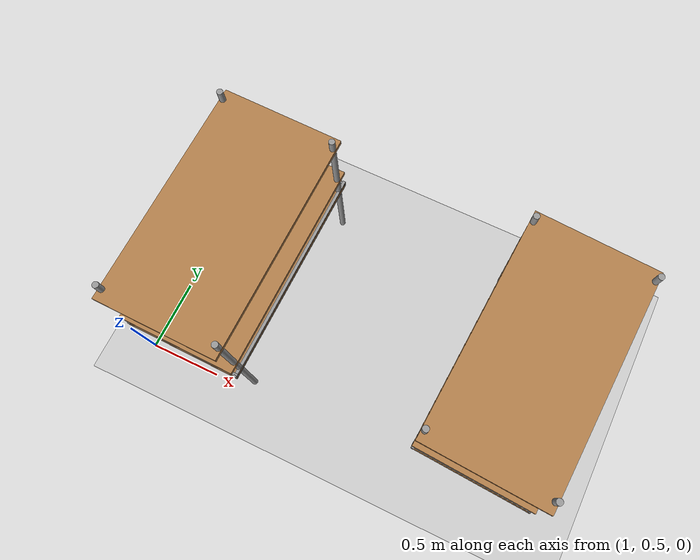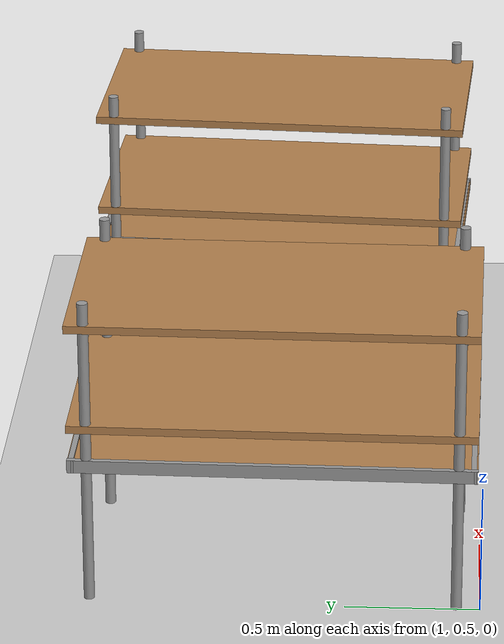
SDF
<sdf version="1.7">
 <world name="default">
  <model name="ground_plane">
   <static>1</static>
   <link name="link">
    <collision name="collision">
     <geometry><plane><normal>0 0 1</normal><size>100 100</size></plane></geometry>
     <surface><friction><ode><mu>100</mu><mu2>50</mu2></ode></friction></surface>
    </collision>
    <visual name="visual">
     <cast_shadows>0</cast_shadows>
     <geometry><plane><normal>0 0 1</normal><size>100 100</size></plane></geometry>
     <material>
      <script><uri>file://media/materials/scripts/gazebo.material</uri><name>Gazebo/Grey</name></script>
     </material>
    </visual>
   </link>
  </model>
  <model name="warehouse_pallet_clone_0_clone_2_clone">
   <link name="warehouse_pallet::link">
    <pose>0 0 -0 0 -0 1.57</pose>
    <inertial>
     <inertia>
      <ixx>0.0267042</ixx>
      <ixy>0</ixy>
      <ixz>0</ixz>
      <iyy>0.0937875</iyy>
      <iyz>0</iyz>
      <izz>0.120417</izz>
     </inertia>
     <mass>0.5</mass>
    </inertial>
    <visual name="holding1_visual">
     <pose>0 0.39 0.45 0 -0 0</pose>
     <geometry><box><size>1.5 0.02 0.05</size></box></geometry>
     <material>
      <script><uri>file://media/materials/scripts/gazebo.material</uri><name>Gazebo/Grey</name></script>
      <shader type="pixel"><normal_map>__default__</normal_map></shader>
      <ambient>0.3 0.3 0.3 1</ambient>
      <diffuse>0.7 0.7 0.7 1</diffuse>
      <specular>0.01 0.01 0.01 1</specular>
      <emissive>0 0 0 1</emissive>
     </material>
    </visual>
    <visual name="front_left_leg">
     <pose>0.68 0.38 0.5 0 -0 0</pose>
     <geometry><cylinder><radius>0.02</radius><length>1.2</length></cylinder></geometry>
     <material>
      <script><uri>file://media/materials/scripts/gazebo.material</uri><name>Gazebo/Grey</name></script>
      <shader type="pixel"><normal_map>__default__</normal_map></shader>
      <ambient>0.3 0.3 0.3 1</ambient>
      <diffuse>0.7 0.7 0.7 1</diffuse>
      <specular>0.01 0.01 0.01 1</specular>
      <emissive>0 0 0 1</emissive>
     </material>
    </visual>
    <visual name="front_right_leg">
     <pose>0.68 -0.38 0.5 0 -0 0</pose>
     <geometry><cylinder><radius>0.02</radius><length>1.2</length></cylinder></geometry>
     <material>
      <script><uri>file://media/materials/scripts/gazebo.material</uri><name>Gazebo/Grey</name></script>
      <shader type="pixel"><normal_map>__default__</normal_map></shader>
      <ambient>0.3 0.3 0.3 1</ambient>
      <diffuse>0.7 0.7 0.7 1</diffuse>
      <specular>0.01 0.01 0.01 1</specular>
      <emissive>0 0 0 1</emissive>
     </material>
    </visual>
    <visual name="back_right_leg">
     <pose>-0.68 -0.38 0.5 0 -0 0</pose>
     <geometry><cylinder><radius>0.02</radius><length>1.2</length></cylinder></geometry>
     <material>
      <script><uri>file://media/materials/scripts/gazebo.material</uri><name>Gazebo/Grey</name></script>
      <shader type="pixel"><normal_map>__default__</normal_map></shader>
      <ambient>0.3 0.3 0.3 1</ambient>
      <diffuse>0.7 0.7 0.7 1</diffuse>
      <specular>0.01 0.01 0.01 1</specular>
      <emissive>0 0 0 1</emissive>
     </material>
    </visual>
    <visual name="back_left_leg">
     <pose>-0.68 0.38 0.5 0 -0 0</pose>
     <geometry><cylinder><radius>0.02</radius><length>1.2</length></cylinder></geometry>
     <material>
      <script><uri>file://media/materials/scripts/gazebo.material</uri><name>Gazebo/Grey</name></script>
      <shader type="pixel"><normal_map>__default__</normal_map></shader>
      <ambient>0.3 0.3 0.3 1</ambient>
      <diffuse>0.7 0.7 0.7 1</diffuse>
      <specular>0.01 0.01 0.01 1</specular>
      <emissive>0 0 0 1</emissive>
     </material>
    </visual>
    <visual name="visual1">
     <pose>0 0 0.45 0 -0 0</pose>
     <geometry><box><size>1.5 0.8 0.03</size></box></geometry>
     <material>
      <script><uri>file://media/materials/scripts/gazebo.material</uri><name>Gazebo/Wood</name></script>
      <shader type="pixel"><normal_map>__default__</normal_map></shader>
      <ambient>1 1 1 1</ambient>
      <diffuse>1 1 1 1</diffuse>
      <specular>0.2 0.2 0.2 1</specular>
      <emissive>0 0 0 1</emissive>
     </material>
    </visual>
    <visual name="holding2_visual">
     <pose>0 -0.39 0.45 0 -0 0</pose>
     <geometry><box><size>1.5 0.02 0.05</size></box></geometry>
     <material>
      <script><uri>file://media/materials/scripts/gazebo.material</uri><name>Gazebo/Grey</name></script>
      <shader type="pixel"><normal_map>__default__</normal_map></shader>
      <ambient>0.3 0.3 0.3 1</ambient>
      <diffuse>0.7 0.7 0.7 1</diffuse>
      <specular>0.01 0.01 0.01 1</specular>
      <emissive>0 0 0 1</emissive>
     </material>
    </visual>
    <visual name="holding3_visual">
     <pose>0.735 0 0.45 0 -0 1.57</pose>
     <geometry><box><size>0.8 0.02 0.05</size></box></geometry>
     <material>
      <script><uri>file://media/materials/scripts/gazebo.material</uri><name>Gazebo/Grey</name></script>
      <shader type="pixel"><normal_map>__default__</normal_map></shader>
      <ambient>0.3 0.3 0.3 1</ambient>
      <diffuse>0.7 0.7 0.7 1</diffuse>
      <specular>0.01 0.01 0.01 1</specular>
      <emissive>0 0 0 1</emissive>
     </material>
    </visual>
    <visual name="holding4_visual">
     <pose>-0.735 0 0.45 0 -0 1.57</pose>
     <geometry><box><size>0.8 0.02 0.05</size></box></geometry>
     <material>
      <script><uri>file://media/materials/scripts/gazebo.material</uri><name>Gazebo/Grey</name></script>
      <shader type="pixel"><normal_map>__default__</normal_map></shader>
      <ambient>0.3 0.3 0.3 1</ambient>
      <diffuse>0.7 0.7 0.7 1</diffuse>
      <specular>0.01 0.01 0.01 1</specular>
      <emissive>0 0 0 1</emissive>
     </material>
    </visual>
    <visual name="visual2">
     <pose>0 0 0.6 0 -0 0</pose>
     <geometry><box><size>1.5 0.8 0.03</size></box></geometry>
     <material>
      <script><uri>file://media/materials/scripts/gazebo.material</uri><name>Gazebo/Wood</name></script>
      <shader type="pixel"><normal_map>__default__</normal_map></shader>
      <ambient>1 1 1 1</ambient>
      <diffuse>1 1 1 1</diffuse>
      <specular>0.2 0.2 0.2 1</specular>
      <emissive>0 0 0 1</emissive>
     </material>
    </visual>
    <visual name="visual3">
     <pose>0 0 1 0 -0 0</pose>
     <geometry><box><size>1.5 0.8 0.03</size></box></geometry>
     <material>
      <script><uri>file://media/materials/scripts/gazebo.material</uri><name>Gazebo/Wood</name></script>
      <shader type="pixel"><normal_map>__default__</normal_map></shader>
      <ambient>1 1 1 1</ambient>
      <diffuse>1 1 1 1</diffuse>
      <specular>0.2 0.2 0.2 1</specular>
      <emissive>0 0 0 1</emissive>
     </material>
    </visual>
    <collision name="surface1">
     <pose>0 0 0.45 0 -0 0</pose>
     <geometry><box><size>1.5 0.8 0.03</size></box></geometry>
     <surface>
      <friction>
       <ode><mu>20</mu><mu2>20</mu2><fdir1>0 0 0</fdir1><slip1>0</slip1><slip2>0</slip2></ode>
       <torsional>
        <coefficient>1</coefficient>
        <patch_radius>0</patch_radius>
        <surface_radius>0</surface_radius>
        <use_patch_radius>1</use_patch_radius>
        <ode><slip>0</slip></ode>
       </torsional>
      </friction>
      <bounce><restitution_coefficient>0</restitution_coefficient><threshold>1e+06</threshold></bounce>
      <contact>
       <collide_without_contact>0</collide_without_contact>
       <collide_without_contact_bitmask>1</collide_without_contact_bitmask>
       <collide_bitmask>1</collide_bitmask>
       <ode>
        <soft_cfm>0</soft_cfm>
        <soft_erp>0.2</soft_erp>
        <kp>1e+13</kp>
        <kd>1</kd>
        <max_vel>0.01</max_vel>
        <min_depth>0</min_depth>
       </ode>
       <bullet>
        <split_impulse>1</split_impulse>
        <split_impulse_penetration_threshold>-0.01</split_impulse_penetration_threshold>
        <soft_cfm>0</soft_cfm>
        <soft_erp>0.2</soft_erp>
        <kp>1e+13</kp>
        <kd>1</kd>
       </bullet>
      </contact>
     </surface>
    </collision>
    <collision name="holding1_collision">
     <pose>0 0.39 0.45 0 -0 0</pose>
     <geometry><box><size>1.5 0.02 0.05</size></box></geometry>
     <surface>
      <friction>
       <ode><mu>1e+09</mu><mu2>1e+09</mu2><fdir1>0 0 0</fdir1><slip1>0</slip1><slip2>0</slip2></ode>
       <torsional>
        <coefficient>1</coefficient>
        <patch_radius>0</patch_radius>
        <surface_radius>0</surface_radius>
        <use_patch_radius>1</use_patch_radius>
        <ode><slip>0</slip></ode>
       </torsional>
      </friction>
      <bounce><restitution_coefficient>0</restitution_coefficient><threshold>1e+06</threshold></bounce>
      <contact>
       <collide_without_contact>0</collide_without_contact>
       <collide_without_contact_bitmask>1</collide_without_contact_bitmask>
       <collide_bitmask>1</collide_bitmask>
       <ode>
        <soft_cfm>0</soft_cfm>
        <soft_erp>0.2</soft_erp>
        <kp>1e+13</kp>
        <kd>1</kd>
        <max_vel>0.01</max_vel>
        <min_depth>0</min_depth>
       </ode>
       <bullet>
        <split_impulse>1</split_impulse>
        <split_impulse_penetration_threshold>-0.01</split_impulse_penetration_threshold>
        <soft_cfm>0</soft_cfm>
        <soft_erp>0.2</soft_erp>
        <kp>1e+13</kp>
        <kd>1</kd>
       </bullet>
      </contact>
     </surface>
    </collision>
    <collision name="holding2_collision">
     <pose>0 -0.39 0.45 0 -0 0</pose>
     <geometry><box><size>1.5 0.02 0.05</size></box></geometry>
     <surface>
      <friction>
       <ode><mu>1e+09</mu><mu2>1e+09</mu2><fdir1>0 0 0</fdir1><slip1>0</slip1><slip2>0</slip2></ode>
       <torsional>
        <coefficient>1</coefficient>
        <patch_radius>0</patch_radius>
        <surface_radius>0</surface_radius>
        <use_patch_radius>1</use_patch_radius>
        <ode><slip>0</slip></ode>
       </torsional>
      </friction>
      <bounce><restitution_coefficient>0</restitution_coefficient><threshold>1e+06</threshold></bounce>
      <contact>
       <collide_without_contact>0</collide_without_contact>
       <collide_without_contact_bitmask>1</collide_without_contact_bitmask>
       <collide_bitmask>1</collide_bitmask>
       <ode>
        <soft_cfm>0</soft_cfm>
        <soft_erp>0.2</soft_erp>
        <kp>1e+13</kp>
        <kd>1</kd>
        <max_vel>0.01</max_vel>
        <min_depth>0</min_depth>
       </ode>
       <bullet>
        <split_impulse>1</split_impulse>
        <split_impulse_penetration_threshold>-0.01</split_impulse_penetration_threshold>
        <soft_cfm>0</soft_cfm>
        <soft_erp>0.2</soft_erp>
        <kp>1e+13</kp>
        <kd>1</kd>
       </bullet>
      </contact>
     </surface>
    </collision>
    <collision name="holding3_collision">
     <pose>0.735 0 0.45 0 -0 1.57</pose>
     <geometry><box><size>0.8 0.02 0.05</size></box></geometry>
     <surface>
      <friction>
       <ode><mu>1e+09</mu><mu2>1e+09</mu2><fdir1>0 0 0</fdir1><slip1>0</slip1><slip2>0</slip2></ode>
       <torsional>
        <coefficient>1</coefficient>
        <patch_radius>0</patch_radius>
        <surface_radius>0</surface_radius>
        <use_patch_radius>1</use_patch_radius>
        <ode><slip>0</slip></ode>
       </torsional>
      </friction>
      <bounce><restitution_coefficient>0</restitution_coefficient><threshold>1e+06</threshold></bounce>
      <contact>
       <collide_without_contact>0</collide_without_contact>
       <collide_without_contact_bitmask>1</collide_without_contact_bitmask>
       <collide_bitmask>1</collide_bitmask>
       <ode>
        <soft_cfm>0</soft_cfm>
        <soft_erp>0.2</soft_erp>
        <kp>1e+13</kp>
        <kd>1</kd>
        <max_vel>0.01</max_vel>
        <min_depth>0</min_depth>
       </ode>
       <bullet>
        <split_impulse>1</split_impulse>
        <split_impulse_penetration_threshold>-0.01</split_impulse_penetration_threshold>
        <soft_cfm>0</soft_cfm>
        <soft_erp>0.2</soft_erp>
        <kp>1e+13</kp>
        <kd>1</kd>
       </bullet>
      </contact>
     </surface>
    </collision>
    <collision name="holding4_collision">
     <pose>-0.735 0 0.45 0 -0 1.57</pose>
     <geometry><box><size>0.8 0.02 0.05</size></box></geometry>
     <surface>
      <friction>
       <ode><mu>1e+09</mu><mu2>1e+09</mu2><fdir1>0 0 0</fdir1><slip1>0</slip1><slip2>0</slip2></ode>
       <torsional>
        <coefficient>1</coefficient>
        <patch_radius>0</patch_radius>
        <surface_radius>0</surface_radius>
        <use_patch_radius>1</use_patch_radius>
        <ode><slip>0</slip></ode>
       </torsional>
      </friction>
      <bounce><restitution_coefficient>0</restitution_coefficient><threshold>1e+06</threshold></bounce>
      <contact>
       <collide_without_contact>0</collide_without_contact>
       <collide_without_contact_bitmask>1</collide_without_contact_bitmask>
       <collide_bitmask>1</collide_bitmask>
       <ode>
        <soft_cfm>0</soft_cfm>
        <soft_erp>0.2</soft_erp>
        <kp>1e+13</kp>
        <kd>1</kd>
        <max_vel>0.01</max_vel>
        <min_depth>0</min_depth>
       </ode>
       <bullet>
        <split_impulse>1</split_impulse>
        <split_impulse_penetration_threshold>-0.01</split_impulse_penetration_threshold>
        <soft_cfm>0</soft_cfm>
        <soft_erp>0.2</soft_erp>
        <kp>1e+13</kp>
        <kd>1</kd>
       </bullet>
      </contact>
     </surface>
    </collision>
    <collision name="surface3">
     <pose>0 0 1 0 -0 0</pose>
     <geometry><box><size>1.5 0.8 0.03</size></box></geometry>
     <surface>
      <friction>
       <ode><mu>2.5</mu><mu2>2.5</mu2><fdir1>0 0 0</fdir1><slip1>0</slip1><slip2>0</slip2></ode>
       <torsional>
        <coefficient>1</coefficient>
        <patch_radius>0</patch_radius>
        <surface_radius>0</surface_radius>
        <use_patch_radius>1</use_patch_radius>
        <ode><slip>0</slip></ode>
       </torsional>
      </friction>
      <bounce><restitution_coefficient>0</restitution_coefficient><threshold>1e+06</threshold></bounce>
      <contact>
       <collide_without_contact>0</collide_without_contact>
       <collide_without_contact_bitmask>1</collide_without_contact_bitmask>
       <collide_bitmask>1</collide_bitmask>
       <ode>
        <soft_cfm>0</soft_cfm>
        <soft_erp>0.2</soft_erp>
        <kp>1e+13</kp>
        <kd>1</kd>
        <max_vel>0.01</max_vel>
        <min_depth>0</min_depth>
       </ode>
       <bullet>
        <split_impulse>1</split_impulse>
        <split_impulse_penetration_threshold>-0.01</split_impulse_penetration_threshold>
        <soft_cfm>0</soft_cfm>
        <soft_erp>0.2</soft_erp>
        <kp>1e+13</kp>
        <kd>1</kd>
       </bullet>
      </contact>
     </surface>
    </collision>
    <collision name="surface2">
     <pose>0 0 0.6 0 -0 0</pose>
     <geometry><box><size>1.5 0.8 0.03</size></box></geometry>
     <surface>
      <friction>
       <ode><mu>2.5</mu><mu2>2.5</mu2><fdir1>0 0 0</fdir1><slip1>0</slip1><slip2>0</slip2></ode>
       <torsional>
        <coefficient>1</coefficient>
        <patch_radius>0</patch_radius>
        <surface_radius>0</surface_radius>
        <use_patch_radius>1</use_patch_radius>
        <ode><slip>0</slip></ode>
       </torsional>
      </friction>
      <bounce><restitution_coefficient>0</restitution_coefficient><threshold>1e+06</threshold></bounce>
      <contact>
       <collide_without_contact>0</collide_without_contact>
       <collide_without_contact_bitmask>1</collide_without_contact_bitmask>
       <collide_bitmask>1</collide_bitmask>
       <ode>
        <soft_cfm>0</soft_cfm>
        <soft_erp>0.2</soft_erp>
        <kp>1e+13</kp>
        <kd>1</kd>
        <max_vel>0.01</max_vel>
        <min_depth>0</min_depth>
       </ode>
       <bullet>
        <split_impulse>1</split_impulse>
        <split_impulse_penetration_threshold>-0.01</split_impulse_penetration_threshold>
        <soft_cfm>0</soft_cfm>
        <soft_erp>0.2</soft_erp>
        <kp>1e+13</kp>
        <kd>1</kd>
       </bullet>
      </contact>
     </surface>
    </collision>
    <collision name="front_right_leg">
     <pose>0.68 -0.38 0.5 0 -0 0</pose>
     <geometry><cylinder><radius>0.02</radius><length>1</length></cylinder></geometry>
     <surface>
      <friction>
       <ode><mu>1</mu><mu2>1.2</mu2><fdir1>0 0 0</fdir1><slip1>0</slip1><slip2>0</slip2></ode>
       <torsional>
        <coefficient>1</coefficient>
        <patch_radius>0</patch_radius>
        <surface_radius>0</surface_radius>
        <use_patch_radius>1</use_patch_radius>
        <ode><slip>0</slip></ode>
       </torsional>
      </friction>
      <bounce><restitution_coefficient>0</restitution_coefficient><threshold>1e+06</threshold></bounce>
      <contact>
       <collide_without_contact>0</collide_without_contact>
       <collide_without_contact_bitmask>1</collide_without_contact_bitmask>
       <collide_bitmask>1</collide_bitmask>
       <ode>
        <soft_cfm>0</soft_cfm>
        <soft_erp>0.2</soft_erp>
        <kp>1e+13</kp>
        <kd>1</kd>
        <max_vel>0.01</max_vel>
        <min_depth>0</min_depth>
       </ode>
       <bullet>
        <split_impulse>1</split_impulse>
        <split_impulse_penetration_threshold>-0.01</split_impulse_penetration_threshold>
        <soft_cfm>0</soft_cfm>
        <soft_erp>0.2</soft_erp>
        <kp>1e+13</kp>
        <kd>1</kd>
       </bullet>
      </contact>
     </surface>
    </collision>
    <collision name="back_right_leg">
     <pose>-0.68 -0.38 0.5 0 -0 0</pose>
     <geometry><cylinder><radius>0.02</radius><length>1.2</length></cylinder></geometry>
     <surface>
      <friction>
       <ode><mu>1</mu><mu2>1</mu2><fdir1>0 0 0</fdir1><slip1>0</slip1><slip2>0</slip2></ode>
       <torsional>
        <coefficient>1</coefficient>
        <patch_radius>0</patch_radius>
        <surface_radius>0</surface_radius>
        <use_patch_radius>1</use_patch_radius>
        <ode><slip>0</slip></ode>
       </torsional>
      </friction>
      <bounce><restitution_coefficient>0</restitution_coefficient><threshold>1e+06</threshold></bounce>
      <contact>
       <collide_without_contact>0</collide_without_contact>
       <collide_without_contact_bitmask>1</collide_without_contact_bitmask>
       <collide_bitmask>1</collide_bitmask>
       <ode>
        <soft_cfm>0</soft_cfm>
        <soft_erp>0.2</soft_erp>
        <kp>1e+13</kp>
        <kd>1</kd>
        <max_vel>0.01</max_vel>
        <min_depth>0</min_depth>
       </ode>
       <bullet>
        <split_impulse>1</split_impulse>
        <split_impulse_penetration_threshold>-0.01</split_impulse_penetration_threshold>
        <soft_cfm>0</soft_cfm>
        <soft_erp>0.2</soft_erp>
        <kp>1e+13</kp>
        <kd>1</kd>
       </bullet>
      </contact>
     </surface>
    </collision>
    <collision name="front_left_leg">
     <pose>0.68 0.38 0.5 0 -0 0</pose>
     <geometry><cylinder><radius>0.02</radius><length>1.2</length></cylinder></geometry>
     <surface>
      <friction>
       <ode><mu>1</mu><mu2>1</mu2><fdir1>0 0 0</fdir1><slip1>0</slip1><slip2>0</slip2></ode>
       <torsional>
        <coefficient>1</coefficient>
        <patch_radius>0</patch_radius>
        <surface_radius>0</surface_radius>
        <use_patch_radius>1</use_patch_radius>
        <ode><slip>0</slip></ode>
       </torsional>
      </friction>
      <bounce><restitution_coefficient>0</restitution_coefficient><threshold>1e+06</threshold></bounce>
      <contact>
       <collide_without_contact>0</collide_without_contact>
       <collide_without_contact_bitmask>1</collide_without_contact_bitmask>
       <collide_bitmask>1</collide_bitmask>
       <ode>
        <soft_cfm>0</soft_cfm>
        <soft_erp>0.2</soft_erp>
        <kp>1e+13</kp>
        <kd>1</kd>
        <max_vel>0.01</max_vel>
        <min_depth>0</min_depth>
       </ode>
       <bullet>
        <split_impulse>1</split_impulse>
        <split_impulse_penetration_threshold>-0.01</split_impulse_penetration_threshold>
        <soft_cfm>0</soft_cfm>
        <soft_erp>0.2</soft_erp>
        <kp>1e+13</kp>
        <kd>1</kd>
       </bullet>
      </contact>
     </surface>
    </collision>
    <collision name="back_left_leg">
     <pose>-0.68 0.38 0.5 0 -0 0</pose>
     <geometry><cylinder><radius>0.02</radius><length>1.2</length></cylinder></geometry>
     <surface>
      <friction>
       <ode><mu>1</mu><mu2>1</mu2><fdir1>0 0 0</fdir1><slip1>0</slip1><slip2>0</slip2></ode>
       <torsional>
        <coefficient>1</coefficient>
        <patch_radius>0</patch_radius>
        <surface_radius>0</surface_radius>
        <use_patch_radius>1</use_patch_radius>
        <ode><slip>0</slip></ode>
       </torsional>
      </friction>
      <bounce><restitution_coefficient>0</restitution_coefficient><threshold>1e+06</threshold></bounce>
      <contact>
       <collide_without_contact>0</collide_without_contact>
       <collide_without_contact_bitmask>1</collide_without_contact_bitmask>
       <collide_bitmask>1</collide_bitmask>
       <ode>
        <soft_cfm>0</soft_cfm>
        <soft_erp>0.2</soft_erp>
        <kp>1e+13</kp>
        <kd>1</kd>
        <max_vel>0.01</max_vel>
        <min_depth>0</min_depth>
       </ode>
       <bullet>
        <split_impulse>1</split_impulse>
        <split_impulse_penetration_threshold>-0.01</split_impulse_penetration_threshold>
        <soft_cfm>0</soft_cfm>
        <soft_erp>0.2</soft_erp>
        <kp>1e+13</kp>
        <kd>1</kd>
       </bullet>
      </contact>
     </surface>
    </collision>
   </link>
   <static>0</static>
   <pose>1.40222 1.26134 0.099998 -8e-06 1.5e-05 -0.014476</pose>
  </model>
  <model name="warehouse_pallet_clone_0_clone_2_clone_3">
   <link name="warehouse_pallet::link">
    <pose>0 0 -0 0 -0 1.57</pose>
    <inertial>
     <inertia>
      <ixx>0.0267042</ixx>
      <ixy>0</ixy>
      <ixz>0</ixz>
      <iyy>0.0937875</iyy>
      <iyz>0</iyz>
      <izz>0.120417</izz>
     </inertia>
     <mass>0.5</mass>
    </inertial>
    <visual name="holding1_visual">
     <pose>0 0.39 0.45 0 -0 0</pose>
     <geometry><box><size>1.5 0.02 0.05</size></box></geometry>
     <material>
      <script><uri>file://media/materials/scripts/gazebo.material</uri><name>Gazebo/Grey</name></script>
      <shader type="pixel"><normal_map>__default__</normal_map></shader>
      <ambient>0.3 0.3 0.3 1</ambient>
      <diffuse>0.7 0.7 0.7 1</diffuse>
      <specular>0.01 0.01 0.01 1</specular>
      <emissive>0 0 0 1</emissive>
     </material>
    </visual>
    <visual name="front_left_leg">
     <pose>0.68 0.38 0.5 0 -0 0</pose>
     <geometry><cylinder><radius>0.02</radius><length>1.2</length></cylinder></geometry>
     <material>
      <script><uri>file://media/materials/scripts/gazebo.material</uri><name>Gazebo/Grey</name></script>
      <shader type="pixel"><normal_map>__default__</normal_map></shader>
      <ambient>0.3 0.3 0.3 1</ambient>
      <diffuse>0.7 0.7 0.7 1</diffuse>
      <specular>0.01 0.01 0.01 1</specular>
      <emissive>0 0 0 1</emissive>
     </material>
    </visual>
    <visual name="front_right_leg">
     <pose>0.68 -0.38 0.5 0 -0 0</pose>
     <geometry><cylinder><radius>0.02</radius><length>1.2</length></cylinder></geometry>
     <material>
      <script><uri>file://media/materials/scripts/gazebo.material</uri><name>Gazebo/Grey</name></script>
      <shader type="pixel"><normal_map>__default__</normal_map></shader>
      <ambient>0.3 0.3 0.3 1</ambient>
      <diffuse>0.7 0.7 0.7 1</diffuse>
      <specular>0.01 0.01 0.01 1</specular>
      <emissive>0 0 0 1</emissive>
     </material>
    </visual>
    <visual name="back_right_leg">
     <pose>-0.68 -0.38 0.5 0 -0 0</pose>
     <geometry><cylinder><radius>0.02</radius><length>1.2</length></cylinder></geometry>
     <material>
      <script><uri>file://media/materials/scripts/gazebo.material</uri><name>Gazebo/Grey</name></script>
      <shader type="pixel"><normal_map>__default__</normal_map></shader>
      <ambient>0.3 0.3 0.3 1</ambient>
      <diffuse>0.7 0.7 0.7 1</diffuse>
      <specular>0.01 0.01 0.01 1</specular>
      <emissive>0 0 0 1</emissive>
     </material>
    </visual>
    <visual name="back_left_leg">
     <pose>-0.68 0.38 0.5 0 -0 0</pose>
     <geometry><cylinder><radius>0.02</radius><length>1.2</length></cylinder></geometry>
     <material>
      <script><uri>file://media/materials/scripts/gazebo.material</uri><name>Gazebo/Grey</name></script>
      <shader type="pixel"><normal_map>__default__</normal_map></shader>
      <ambient>0.3 0.3 0.3 1</ambient>
      <diffuse>0.7 0.7 0.7 1</diffuse>
      <specular>0.01 0.01 0.01 1</specular>
      <emissive>0 0 0 1</emissive>
     </material>
    </visual>
    <visual name="visual1">
     <pose>0 0 0.45 0 -0 0</pose>
     <geometry><box><size>1.5 0.8 0.03</size></box></geometry>
     <material>
      <script><uri>file://media/materials/scripts/gazebo.material</uri><name>Gazebo/Wood</name></script>
      <shader type="pixel"><normal_map>__default__</normal_map></shader>
      <ambient>1 1 1 1</ambient>
      <diffuse>1 1 1 1</diffuse>
      <specular>0.2 0.2 0.2 1</specular>
      <emissive>0 0 0 1</emissive>
     </material>
    </visual>
    <visual name="holding2_visual">
     <pose>0 -0.39 0.45 0 -0 0</pose>
     <geometry><box><size>1.5 0.02 0.05</size></box></geometry>
     <material>
      <script><uri>file://media/materials/scripts/gazebo.material</uri><name>Gazebo/Grey</name></script>
      <shader type="pixel"><normal_map>__default__</normal_map></shader>
      <ambient>0.3 0.3 0.3 1</ambient>
      <diffuse>0.7 0.7 0.7 1</diffuse>
      <specular>0.01 0.01 0.01 1</specular>
      <emissive>0 0 0 1</emissive>
     </material>
    </visual>
    <visual name="holding3_visual">
     <pose>0.735 0 0.45 0 -0 1.57</pose>
     <geometry><box><size>0.8 0.02 0.05</size></box></geometry>
     <material>
      <script><uri>file://media/materials/scripts/gazebo.material</uri><name>Gazebo/Grey</name></script>
      <shader type="pixel"><normal_map>__default__</normal_map></shader>
      <ambient>0.3 0.3 0.3 1</ambient>
      <diffuse>0.7 0.7 0.7 1</diffuse>
      <specular>0.01 0.01 0.01 1</specular>
      <emissive>0 0 0 1</emissive>
     </material>
    </visual>
    <visual name="holding4_visual">
     <pose>-0.735 0 0.45 0 -0 1.57</pose>
     <geometry><box><size>0.8 0.02 0.05</size></box></geometry>
     <material>
      <script><uri>file://media/materials/scripts/gazebo.material</uri><name>Gazebo/Grey</name></script>
      <shader type="pixel"><normal_map>__default__</normal_map></shader>
      <ambient>0.3 0.3 0.3 1</ambient>
      <diffuse>0.7 0.7 0.7 1</diffuse>
      <specular>0.01 0.01 0.01 1</specular>
      <emissive>0 0 0 1</emissive>
     </material>
    </visual>
    <visual name="visual2">
     <pose>0 0 0.6 0 -0 0</pose>
     <geometry><box><size>1.5 0.8 0.03</size></box></geometry>
     <material>
      <script><uri>file://media/materials/scripts/gazebo.material</uri><name>Gazebo/Wood</name></script>
      <shader type="pixel"><normal_map>__default__</normal_map></shader>
      <ambient>1 1 1 1</ambient>
      <diffuse>1 1 1 1</diffuse>
      <specular>0.2 0.2 0.2 1</specular>
      <emissive>0 0 0 1</emissive>
     </material>
    </visual>
    <visual name="visual3">
     <pose>0 0 1 0 -0 0</pose>
     <geometry><box><size>1.5 0.8 0.03</size></box></geometry>
     <material>
      <script><uri>file://media/materials/scripts/gazebo.material</uri><name>Gazebo/Wood</name></script>
      <shader type="pixel"><normal_map>__default__</normal_map></shader>
      <ambient>1 1 1 1</ambient>
      <diffuse>1 1 1 1</diffuse>
      <specular>0.2 0.2 0.2 1</specular>
      <emissive>0 0 0 1</emissive>
     </material>
    </visual>
    <collision name="surface1">
     <pose>0 0 0.45 0 -0 0</pose>
     <geometry><box><size>1.5 0.8 0.03</size></box></geometry>
     <surface>
      <friction>
       <ode><mu>20</mu><mu2>20</mu2><fdir1>0 0 0</fdir1><slip1>0</slip1><slip2>0</slip2></ode>
       <torsional>
        <coefficient>1</coefficient>
        <patch_radius>0</patch_radius>
        <surface_radius>0</surface_radius>
        <use_patch_radius>1</use_patch_radius>
        <ode><slip>0</slip></ode>
       </torsional>
      </friction>
      <bounce><restitution_coefficient>0</restitution_coefficient><threshold>1e+06</threshold></bounce>
      <contact>
       <collide_without_contact>0</collide_without_contact>
       <collide_without_contact_bitmask>1</collide_without_contact_bitmask>
       <collide_bitmask>1</collide_bitmask>
       <ode>
        <soft_cfm>0</soft_cfm>
        <soft_erp>0.2</soft_erp>
        <kp>1e+13</kp>
        <kd>1</kd>
        <max_vel>0.01</max_vel>
        <min_depth>0</min_depth>
       </ode>
       <bullet>
        <split_impulse>1</split_impulse>
        <split_impulse_penetration_threshold>-0.01</split_impulse_penetration_threshold>
        <soft_cfm>0</soft_cfm>
        <soft_erp>0.2</soft_erp>
        <kp>1e+13</kp>
        <kd>1</kd>
       </bullet>
      </contact>
     </surface>
    </collision>
    <collision name="holding1_collision">
     <pose>0 0.39 0.45 0 -0 0</pose>
     <geometry><box><size>1.5 0.02 0.05</size></box></geometry>
     <surface>
      <friction>
       <ode><mu>1e+09</mu><mu2>1e+09</mu2><fdir1>0 0 0</fdir1><slip1>0</slip1><slip2>0</slip2></ode>
       <torsional>
        <coefficient>1</coefficient>
        <patch_radius>0</patch_radius>
        <surface_radius>0</surface_radius>
        <use_patch_radius>1</use_patch_radius>
        <ode><slip>0</slip></ode>
       </torsional>
      </friction>
      <bounce><restitution_coefficient>0</restitution_coefficient><threshold>1e+06</threshold></bounce>
      <contact>
       <collide_without_contact>0</collide_without_contact>
       <collide_without_contact_bitmask>1</collide_without_contact_bitmask>
       <collide_bitmask>1</collide_bitmask>
       <ode>
        <soft_cfm>0</soft_cfm>
        <soft_erp>0.2</soft_erp>
        <kp>1e+13</kp>
        <kd>1</kd>
        <max_vel>0.01</max_vel>
        <min_depth>0</min_depth>
       </ode>
       <bullet>
        <split_impulse>1</split_impulse>
        <split_impulse_penetration_threshold>-0.01</split_impulse_penetration_threshold>
        <soft_cfm>0</soft_cfm>
        <soft_erp>0.2</soft_erp>
        <kp>1e+13</kp>
        <kd>1</kd>
       </bullet>
      </contact>
     </surface>
    </collision>
    <collision name="holding2_collision">
     <pose>0 -0.39 0.45 0 -0 0</pose>
     <geometry><box><size>1.5 0.02 0.05</size></box></geometry>
     <surface>
      <friction>
       <ode><mu>1e+09</mu><mu2>1e+09</mu2><fdir1>0 0 0</fdir1><slip1>0</slip1><slip2>0</slip2></ode>
       <torsional>
        <coefficient>1</coefficient>
        <patch_radius>0</patch_radius>
        <surface_radius>0</surface_radius>
        <use_patch_radius>1</use_patch_radius>
        <ode><slip>0</slip></ode>
       </torsional>
      </friction>
      <bounce><restitution_coefficient>0</restitution_coefficient><threshold>1e+06</threshold></bounce>
      <contact>
       <collide_without_contact>0</collide_without_contact>
       <collide_without_contact_bitmask>1</collide_without_contact_bitmask>
       <collide_bitmask>1</collide_bitmask>
       <ode>
        <soft_cfm>0</soft_cfm>
        <soft_erp>0.2</soft_erp>
        <kp>1e+13</kp>
        <kd>1</kd>
        <max_vel>0.01</max_vel>
        <min_depth>0</min_depth>
       </ode>
       <bullet>
        <split_impulse>1</split_impulse>
        <split_impulse_penetration_threshold>-0.01</split_impulse_penetration_threshold>
        <soft_cfm>0</soft_cfm>
        <soft_erp>0.2</soft_erp>
        <kp>1e+13</kp>
        <kd>1</kd>
       </bullet>
      </contact>
     </surface>
    </collision>
    <collision name="holding3_collision">
     <pose>0.735 0 0.45 0 -0 1.57</pose>
     <geometry><box><size>0.8 0.02 0.05</size></box></geometry>
     <surface>
      <friction>
       <ode><mu>1e+09</mu><mu2>1e+09</mu2><fdir1>0 0 0</fdir1><slip1>0</slip1><slip2>0</slip2></ode>
       <torsional>
        <coefficient>1</coefficient>
        <patch_radius>0</patch_radius>
        <surface_radius>0</surface_radius>
        <use_patch_radius>1</use_patch_radius>
        <ode><slip>0</slip></ode>
       </torsional>
      </friction>
      <bounce><restitution_coefficient>0</restitution_coefficient><threshold>1e+06</threshold></bounce>
      <contact>
       <collide_without_contact>0</collide_without_contact>
       <collide_without_contact_bitmask>1</collide_without_contact_bitmask>
       <collide_bitmask>1</collide_bitmask>
       <ode>
        <soft_cfm>0</soft_cfm>
        <soft_erp>0.2</soft_erp>
        <kp>1e+13</kp>
        <kd>1</kd>
        <max_vel>0.01</max_vel>
        <min_depth>0</min_depth>
       </ode>
       <bullet>
        <split_impulse>1</split_impulse>
        <split_impulse_penetration_threshold>-0.01</split_impulse_penetration_threshold>
        <soft_cfm>0</soft_cfm>
        <soft_erp>0.2</soft_erp>
        <kp>1e+13</kp>
        <kd>1</kd>
       </bullet>
      </contact>
     </surface>
    </collision>
    <collision name="holding4_collision">
     <pose>-0.735 0 0.45 0 -0 1.57</pose>
     <geometry><box><size>0.8 0.02 0.05</size></box></geometry>
     <surface>
      <friction>
       <ode><mu>1e+09</mu><mu2>1e+09</mu2><fdir1>0 0 0</fdir1><slip1>0</slip1><slip2>0</slip2></ode>
       <torsional>
        <coefficient>1</coefficient>
        <patch_radius>0</patch_radius>
        <surface_radius>0</surface_radius>
        <use_patch_radius>1</use_patch_radius>
        <ode><slip>0</slip></ode>
       </torsional>
      </friction>
      <bounce><restitution_coefficient>0</restitution_coefficient><threshold>1e+06</threshold></bounce>
      <contact>
       <collide_without_contact>0</collide_without_contact>
       <collide_without_contact_bitmask>1</collide_without_contact_bitmask>
       <collide_bitmask>1</collide_bitmask>
       <ode>
        <soft_cfm>0</soft_cfm>
        <soft_erp>0.2</soft_erp>
        <kp>1e+13</kp>
        <kd>1</kd>
        <max_vel>0.01</max_vel>
        <min_depth>0</min_depth>
       </ode>
       <bullet>
        <split_impulse>1</split_impulse>
        <split_impulse_penetration_threshold>-0.01</split_impulse_penetration_threshold>
        <soft_cfm>0</soft_cfm>
        <soft_erp>0.2</soft_erp>
        <kp>1e+13</kp>
        <kd>1</kd>
       </bullet>
      </contact>
     </surface>
    </collision>
    <collision name="surface3">
     <pose>0 0 1 0 -0 0</pose>
     <geometry><box><size>1.5 0.8 0.03</size></box></geometry>
     <surface>
      <friction>
       <ode><mu>2.5</mu><mu2>2.5</mu2><fdir1>0 0 0</fdir1><slip1>0</slip1><slip2>0</slip2></ode>
       <torsional>
        <coefficient>1</coefficient>
        <patch_radius>0</patch_radius>
        <surface_radius>0</surface_radius>
        <use_patch_radius>1</use_patch_radius>
        <ode><slip>0</slip></ode>
       </torsional>
      </friction>
      <bounce><restitution_coefficient>0</restitution_coefficient><threshold>1e+06</threshold></bounce>
      <contact>
       <collide_without_contact>0</collide_without_contact>
       <collide_without_contact_bitmask>1</collide_without_contact_bitmask>
       <collide_bitmask>1</collide_bitmask>
       <ode>
        <soft_cfm>0</soft_cfm>
        <soft_erp>0.2</soft_erp>
        <kp>1e+13</kp>
        <kd>1</kd>
        <max_vel>0.01</max_vel>
        <min_depth>0</min_depth>
       </ode>
       <bullet>
        <split_impulse>1</split_impulse>
        <split_impulse_penetration_threshold>-0.01</split_impulse_penetration_threshold>
        <soft_cfm>0</soft_cfm>
        <soft_erp>0.2</soft_erp>
        <kp>1e+13</kp>
        <kd>1</kd>
       </bullet>
      </contact>
     </surface>
    </collision>
    <collision name="surface2">
     <pose>0 0 0.6 0 -0 0</pose>
     <geometry><box><size>1.5 0.8 0.03</size></box></geometry>
     <surface>
      <friction>
       <ode><mu>2.5</mu><mu2>2.5</mu2><fdir1>0 0 0</fdir1><slip1>0</slip1><slip2>0</slip2></ode>
       <torsional>
        <coefficient>1</coefficient>
        <patch_radius>0</patch_radius>
        <surface_radius>0</surface_radius>
        <use_patch_radius>1</use_patch_radius>
        <ode><slip>0</slip></ode>
       </torsional>
      </friction>
      <bounce><restitution_coefficient>0</restitution_coefficient><threshold>1e+06</threshold></bounce>
      <contact>
       <collide_without_contact>0</collide_without_contact>
       <collide_without_contact_bitmask>1</collide_without_contact_bitmask>
       <collide_bitmask>1</collide_bitmask>
       <ode>
        <soft_cfm>0</soft_cfm>
        <soft_erp>0.2</soft_erp>
        <kp>1e+13</kp>
        <kd>1</kd>
        <max_vel>0.01</max_vel>
        <min_depth>0</min_depth>
       </ode>
       <bullet>
        <split_impulse>1</split_impulse>
        <split_impulse_penetration_threshold>-0.01</split_impulse_penetration_threshold>
        <soft_cfm>0</soft_cfm>
        <soft_erp>0.2</soft_erp>
        <kp>1e+13</kp>
        <kd>1</kd>
       </bullet>
      </contact>
     </surface>
    </collision>
    <collision name="front_right_leg">
     <pose>0.68 -0.38 0.5 0 -0 0</pose>
     <geometry><cylinder><radius>0.02</radius><length>1</length></cylinder></geometry>
     <surface>
      <friction>
       <ode><mu>1</mu><mu2>1.2</mu2><fdir1>0 0 0</fdir1><slip1>0</slip1><slip2>0</slip2></ode>
       <torsional>
        <coefficient>1</coefficient>
        <patch_radius>0</patch_radius>
        <surface_radius>0</surface_radius>
        <use_patch_radius>1</use_patch_radius>
        <ode><slip>0</slip></ode>
       </torsional>
      </friction>
      <bounce><restitution_coefficient>0</restitution_coefficient><threshold>1e+06</threshold></bounce>
      <contact>
       <collide_without_contact>0</collide_without_contact>
       <collide_without_contact_bitmask>1</collide_without_contact_bitmask>
       <collide_bitmask>1</collide_bitmask>
       <ode>
        <soft_cfm>0</soft_cfm>
        <soft_erp>0.2</soft_erp>
        <kp>1e+13</kp>
        <kd>1</kd>
        <max_vel>0.01</max_vel>
        <min_depth>0</min_depth>
       </ode>
       <bullet>
        <split_impulse>1</split_impulse>
        <split_impulse_penetration_threshold>-0.01</split_impulse_penetration_threshold>
        <soft_cfm>0</soft_cfm>
        <soft_erp>0.2</soft_erp>
        <kp>1e+13</kp>
        <kd>1</kd>
       </bullet>
      </contact>
     </surface>
    </collision>
    <collision name="back_right_leg">
     <pose>-0.68 -0.38 0.5 0 -0 0</pose>
     <geometry><cylinder><radius>0.02</radius><length>1.2</length></cylinder></geometry>
     <surface>
      <friction>
       <ode><mu>1</mu><mu2>1</mu2><fdir1>0 0 0</fdir1><slip1>0</slip1><slip2>0</slip2></ode>
       <torsional>
        <coefficient>1</coefficient>
        <patch_radius>0</patch_radius>
        <surface_radius>0</surface_radius>
        <use_patch_radius>1</use_patch_radius>
        <ode><slip>0</slip></ode>
       </torsional>
      </friction>
      <bounce><restitution_coefficient>0</restitution_coefficient><threshold>1e+06</threshold></bounce>
      <contact>
       <collide_without_contact>0</collide_without_contact>
       <collide_without_contact_bitmask>1</collide_without_contact_bitmask>
       <collide_bitmask>1</collide_bitmask>
       <ode>
        <soft_cfm>0</soft_cfm>
        <soft_erp>0.2</soft_erp>
        <kp>1e+13</kp>
        <kd>1</kd>
        <max_vel>0.01</max_vel>
        <min_depth>0</min_depth>
       </ode>
       <bullet>
        <split_impulse>1</split_impulse>
        <split_impulse_penetration_threshold>-0.01</split_impulse_penetration_threshold>
        <soft_cfm>0</soft_cfm>
        <soft_erp>0.2</soft_erp>
        <kp>1e+13</kp>
        <kd>1</kd>
       </bullet>
      </contact>
     </surface>
    </collision>
    <collision name="front_left_leg">
     <pose>0.68 0.38 0.5 0 -0 0</pose>
     <geometry><cylinder><radius>0.02</radius><length>1.2</length></cylinder></geometry>
     <surface>
      <friction>
       <ode><mu>1</mu><mu2>1</mu2><fdir1>0 0 0</fdir1><slip1>0</slip1><slip2>0</slip2></ode>
       <torsional>
        <coefficient>1</coefficient>
        <patch_radius>0</patch_radius>
        <surface_radius>0</surface_radius>
        <use_patch_radius>1</use_patch_radius>
        <ode><slip>0</slip></ode>
       </torsional>
      </friction>
      <bounce><restitution_coefficient>0</restitution_coefficient><threshold>1e+06</threshold></bounce>
      <contact>
       <collide_without_contact>0</collide_without_contact>
       <collide_without_contact_bitmask>1</collide_without_contact_bitmask>
       <collide_bitmask>1</collide_bitmask>
       <ode>
        <soft_cfm>0</soft_cfm>
        <soft_erp>0.2</soft_erp>
        <kp>1e+13</kp>
        <kd>1</kd>
        <max_vel>0.01</max_vel>
        <min_depth>0</min_depth>
       </ode>
       <bullet>
        <split_impulse>1</split_impulse>
        <split_impulse_penetration_threshold>-0.01</split_impulse_penetration_threshold>
        <soft_cfm>0</soft_cfm>
        <soft_erp>0.2</soft_erp>
        <kp>1e+13</kp>
        <kd>1</kd>
       </bullet>
      </contact>
     </surface>
    </collision>
    <collision name="back_left_leg">
     <pose>-0.68 0.38 0.5 0 -0 0</pose>
     <geometry><cylinder><radius>0.02</radius><length>1.2</length></cylinder></geometry>
     <surface>
      <friction>
       <ode><mu>1</mu><mu2>1</mu2><fdir1>0 0 0</fdir1><slip1>0</slip1><slip2>0</slip2></ode>
       <torsional>
        <coefficient>1</coefficient>
        <patch_radius>0</patch_radius>
        <surface_radius>0</surface_radius>
        <use_patch_radius>1</use_patch_radius>
        <ode><slip>0</slip></ode>
       </torsional>
      </friction>
      <bounce><restitution_coefficient>0</restitution_coefficient><threshold>1e+06</threshold></bounce>
      <contact>
       <collide_without_contact>0</collide_without_contact>
       <collide_without_contact_bitmask>1</collide_without_contact_bitmask>
       <collide_bitmask>1</collide_bitmask>
       <ode>
        <soft_cfm>0</soft_cfm>
        <soft_erp>0.2</soft_erp>
        <kp>1e+13</kp>
        <kd>1</kd>
        <max_vel>0.01</max_vel>
        <min_depth>0</min_depth>
       </ode>
       <bullet>
        <split_impulse>1</split_impulse>
        <split_impulse_penetration_threshold>-0.01</split_impulse_penetration_threshold>
        <soft_cfm>0</soft_cfm>
        <soft_erp>0.2</soft_erp>
        <kp>1e+13</kp>
        <kd>1</kd>
       </bullet>
      </contact>
     </surface>
    </collision>
   </link>
   <static>0</static>
   <pose>3.39664 1.31478 0.099963 -2.7e-05 0.000153 -0.054438</pose>
  </model>
 </world>
</sdf>
